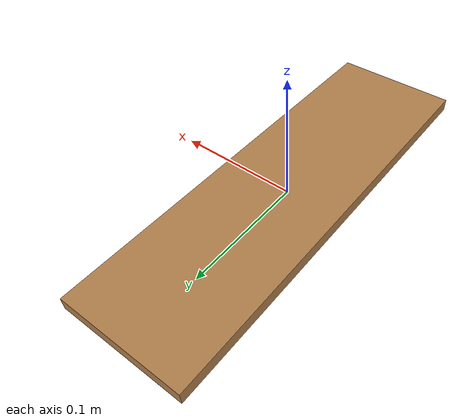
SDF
<?xml version="1.0" ?>

<sdf version="1.5">
  <model name="peg_board">
    <link name="base">
      <pose>0 0 0.00523 0 0 0</pose>
      <inertial>
        <mass>0.2765</mass>
        <inertia>
          <ixx>0.0025148009472833336</ixx>
          <ixy>0</ixy>
          <ixz>0</ixz>
          <iyy>0.00024037001228333334</iyy>
          <iyz>0</iyz>
          <izz>0.002750128908333333</izz>
        </inertia>
      </inertial>

      <collision name="collision">
        <geometry>
          <box>
            <size>0.1016 0.3302 0.01046</size>
          </box>
        </geometry>
        <surface>
          <contact>
            <ode>
              <max_vel>0.1</max_vel>
              <min_depth>0.001</min_depth>
            </ode>
          </contact>
        </surface>
      </collision>

      <visual name="visual">
        <geometry>
          <box>
            <size>0.1016 0.3302 0.01046</size>
          </box>
        </geometry>
        <material>
          <script>
            <uri>file://media/materials/scripts/gazebo.material</uri>
            <name>Gazebo/Wood</name>
          </script>
        </material>
      </visual>
    </link>

  </model>
</sdf>
